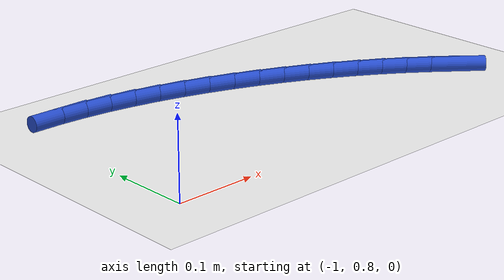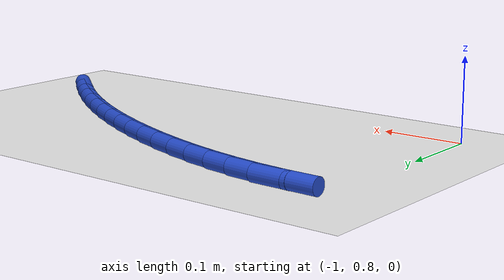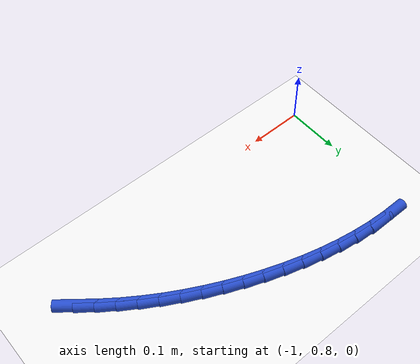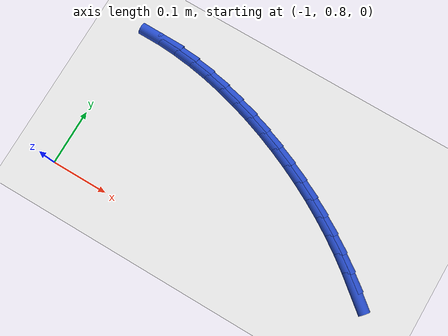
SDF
<sdf version="1.6">
 <world name="default">
  <model name="ground_plane">
   <static>1</static>
   <link name="link">
    <collision name="collision">
     <geometry><plane><normal>0 0 1</normal><size>100 100</size></plane></geometry>
     <surface><friction><ode><mu>100</mu><mu2>50</mu2></ode></friction></surface>
    </collision>
    <visual name="visual">
     <cast_shadows>0</cast_shadows>
     <geometry><plane><normal>0 0 1</normal><size>100 100</size></plane></geometry>
     <material>
      <script><uri>file://media/materials/scripts/gazebo.material</uri><name>Gazebo/WhiteGlow</name></script>
     </material>
    </visual>
   </link>
  </model>
  <model name="line">
   <link name="link_31">
    <pose>-0.4706711245822668 0.8706512474147835 0.01 0 1.57 -0.68808438988185</pose>
    <collision name="collision">
     <geometry><cylinder><radius>0.01</radius><length>0.08</length></cylinder></geometry>
    </collision>
    <visual name="visual">
     <material>
      <script><name>Gazebo/Blue</name><uri>file://media/materials/scripts/gazebo.material</uri></script>
     </material>
     <geometry><cylinder><radius>0.01</radius><length>0.08</length></cylinder></geometry>
    </visual>
   </link>
   <link name="link_32">
    <pose>-0.49584100168224354 0.8913439243987712 0.01 0 1.57 -0.6469970846527484</pose>
    <collision name="collision">
     <geometry><cylinder><radius>0.01</radius><length>0.08</length></cylinder></geometry>
    </collision>
    <visual name="visual">
     <material>
      <script><name>Gazebo/Blue</name><uri>file://media/materials/scripts/gazebo.material</uri></script>
     </material>
     <geometry><cylinder><radius>0.01</radius><length>0.08</length></cylinder></geometry>
    </visual>
   </link>
   <link name="link_33">
    <pose>-0.5219031497045087 0.9110332737548389 0.01 0 1.57 -0.6067290212405997</pose>
    <collision name="collision">
     <geometry><cylinder><radius>0.01</radius><length>0.08</length></cylinder></geometry>
    </collision>
    <visual name="visual">
     <material>
      <script><name>Gazebo/Blue</name><uri>file://media/materials/scripts/gazebo.material</uri></script>
     </material>
     <geometry><cylinder><radius>0.01</radius><length>0.08</length></cylinder></geometry>
    </visual>
   </link>
   <link name="link_34">
    <pose>-0.5488213341924688 0.9297161395453536 0.01 0 1.57 -0.567287908410215</pose>
    <collision name="collision">
     <geometry><cylinder><radius>0.01</radius><length>0.08</length></cylinder></geometry>
    </collision>
    <visual name="visual">
     <material>
      <script><name>Gazebo/Blue</name><uri>file://media/materials/scripts/gazebo.material</uri></script>
     </material>
     <geometry><cylinder><radius>0.01</radius><length>0.08</length></cylinder></geometry>
    </visual>
   </link>
   <link name="link_35">
    <pose>-0.57655932068953 0.947389365832681 0.01 0 1.57 -0.5286721881044404</pose>
    <collision name="collision">
     <geometry><cylinder><radius>0.01</radius><length>0.08</length></cylinder></geometry>
    </collision>
    <visual name="visual">
     <material>
      <script><name>Gazebo/Blue</name><uri>file://media/materials/scripts/gazebo.material</uri></script>
     </material>
     <geometry><cylinder><radius>0.01</radius><length>0.08</length></cylinder></geometry>
    </visual>
   </link>
   <link name="link_36">
    <pose>-0.6050808747390986 0.9640497966791872 0.01 0 1.57 -0.4908720810295509</pose>
    <collision name="collision">
     <geometry><cylinder><radius>0.01</radius><length>0.08</length></cylinder></geometry>
    </collision>
    <visual name="visual">
     <material>
      <script><name>Gazebo/Blue</name><uri>file://media/materials/scripts/gazebo.material</uri></script>
     </material>
     <geometry><cylinder><radius>0.01</radius><length>0.08</length></cylinder></geometry>
    </visual>
   </link>
   <link name="link_37">
    <pose>-0.6343497618845811 0.9796942761472387 0.01 0 1.57 -0.4538706446735768</pose>
    <collision name="collision">
     <geometry><cylinder><radius>0.01</radius><length>0.08</length></cylinder></geometry>
    </collision>
    <visual name="visual">
     <material>
      <script><name>Gazebo/Blue</name><uri>file://media/materials/scripts/gazebo.material</uri></script>
     </material>
     <geometry><cylinder><radius>0.01</radius><length>0.08</length></cylinder></geometry>
    </visual>
   </link>
   <link name="link_38">
    <pose>-0.6643297476693841 0.9943196482992017 0.01 0 1.57 -0.4176448072118218</pose>
    <collision name="collision">
     <geometry><cylinder><radius>0.01</radius><length>0.08</length></cylinder></geometry>
    </collision>
    <visual name="visual">
     <material>
      <script><name>Gazebo/Blue</name><uri>file://media/materials/scripts/gazebo.material</uri></script>
     </material>
     <geometry><cylinder><radius>0.01</radius><length>0.08</length></cylinder></geometry>
    </visual>
   </link>
   <link name="link_39">
    <pose>-0.6949845976369133 1.0079227571974423 0.01 0 1.57 -0.38186531664303963</pose>
    <collision name="collision">
     <geometry><cylinder><radius>0.01</radius><length>0.08</length></cylinder></geometry>
    </collision>
    <visual name="visual">
     <material>
      <script><name>Gazebo/Blue</name><uri>file://media/materials/scripts/gazebo.material</uri></script>
     </material>
     <geometry><cylinder><radius>0.01</radius><length>0.08</length></cylinder></geometry>
    </visual>
   </link>
   <link name="link_40">
    <pose>-0.7262699692889628 1.020486250027727 0.01 0 1.57 -0.3448632830701141</pose>
    <collision name="collision">
     <geometry><cylinder><radius>0.01</radius><length>0.08</length></cylinder></geometry>
    </collision>
    <visual name="visual">
     <material>
      <script><name>Gazebo/Blue</name><uri>file://media/materials/scripts/gazebo.material</uri></script>
     </material>
     <geometry><cylinder><radius>0.01</radius><length>0.08</length></cylinder></geometry>
    </visual>
   </link>
   <link name="link_41">
    <pose>-0.7581000731409825 1.0319202018580838 0.01 0 1.57 -0.30585035486515677</pose>
    <collision name="collision">
     <geometry><cylinder><radius>0.01</radius><length>0.08</length></cylinder></geometry>
    </collision>
    <visual name="visual">
     <material>
      <script><name>Gazebo/Blue</name><uri>file://media/materials/scripts/gazebo.material</uri></script>
     </material>
     <geometry><cylinder><radius>0.01</radius><length>0.08</length></cylinder></geometry>
    </visual>
   </link>
   <link name="link_42">
    <pose>-0.7903759108145719 1.0421115594790884 0.01 0 1.57 -0.26450042342660635</pose>
    <collision name="collision">
     <geometry><cylinder><radius>0.01</radius><length>0.08</length></cylinder></geometry>
    </collision>
    <visual name="visual">
     <material>
      <script><name>Gazebo/Blue</name><uri>file://media/materials/scripts/gazebo.material</uri></script>
     </material>
     <geometry><cylinder><radius>0.01</radius><length>0.08</length></cylinder></geometry>
    </visual>
   </link>
   <link name="link_43">
    <pose>-0.822998478279847 1.0509472597857805 0.01 0 1.57 -0.22047928839159955</pose>
    <collision name="collision">
     <geometry><cylinder><radius>0.01</radius><length>0.08</length></cylinder></geometry>
    </collision>
    <visual name="visual">
     <material>
      <script><name>Gazebo/Blue</name><uri>file://media/materials/scripts/gazebo.material</uri></script>
     </material>
     <geometry><cylinder><radius>0.01</radius><length>0.08</length></cylinder></geometry>
    </visual>
   </link>
   <link name="link_44">
    <pose>-0.855868771506923 1.058314239673199 0.01 0 1.57 -0.17344750182670687</pose>
    <collision name="collision">
     <geometry><cylinder><radius>0.01</radius><length>0.08</length></cylinder></geometry>
    </collision>
    <visual name="visual">
     <material>
      <script><name>Gazebo/Blue</name><uri>file://media/materials/scripts/gazebo.material</uri></script>
     </material>
     <geometry><cylinder><radius>0.01</radius><length>0.08</length></cylinder></geometry>
    </visual>
   </link>
   <link name="link_45">
    <pose>-0.8888877864659157 1.0640994360363836 0.01 0 1.57 -0.12306726998541412</pose>
    <collision name="collision">
     <geometry><cylinder><radius>0.01</radius><length>0.08</length></cylinder></geometry>
    </collision>
    <visual name="visual">
     <material>
      <script><name>Gazebo/Blue</name><uri>file://media/materials/scripts/gazebo.material</uri></script>
     </material>
     <geometry><cylinder><radius>0.01</radius><length>0.08</length></cylinder></geometry>
    </visual>
   </link>
   <link name="link_46">
    <pose>-0.9219565191269404 1.0681897857703726 0.01 0 1.57 -0.06901433440851065</pose>
    <collision name="collision">
     <geometry><cylinder><radius>0.01</radius><length>0.08</length></cylinder></geometry>
    </collision>
    <visual name="visual">
     <material>
      <script><name>Gazebo/Blue</name><uri>file://media/materials/scripts/gazebo.material</uri></script>
     </material>
     <geometry><cylinder><radius>0.01</radius><length>0.08</length></cylinder></geometry>
    </visual>
   </link>
   <link name="link_47">
    <pose>-0.9549759654601131 1.0704722257702062 0.01 0 1.57 -0.010996041398290225</pose>
    <collision name="collision">
     <geometry><cylinder><radius>0.01</radius><length>0.08</length></cylinder></geometry>
    </collision>
    <visual name="visual">
     <material>
      <script><name>Gazebo/Blue</name><uri>file://media/materials/scripts/gazebo.material</uri></script>
     </material>
     <geometry><cylinder><radius>0.01</radius><length>0.08</length></cylinder></geometry>
    </visual>
   </link>
  </model>
 </world>
</sdf>
